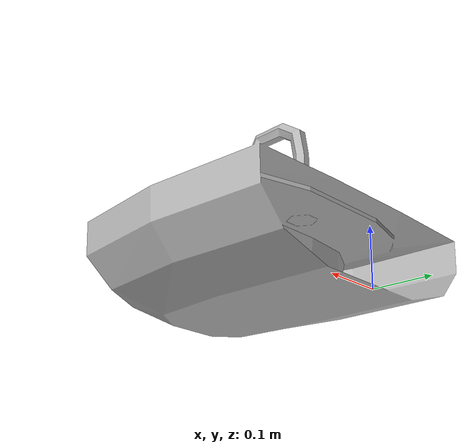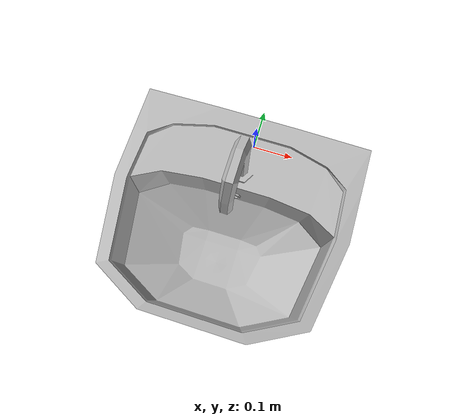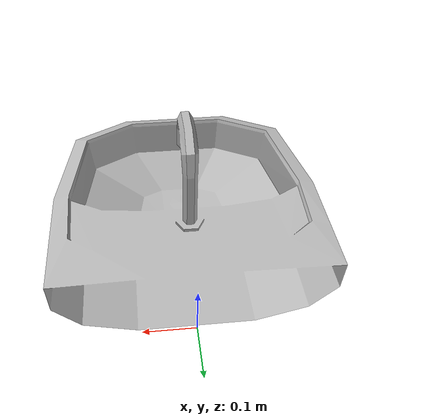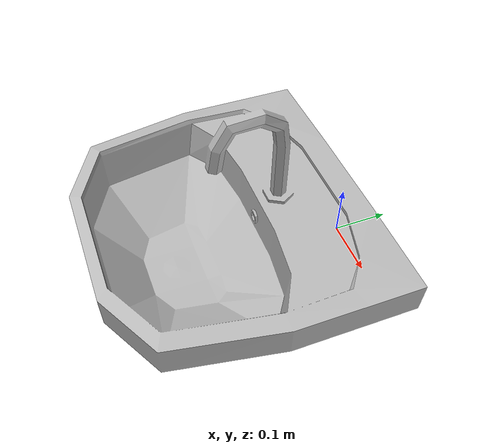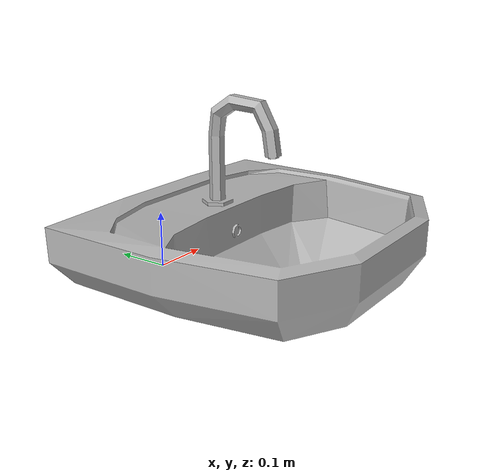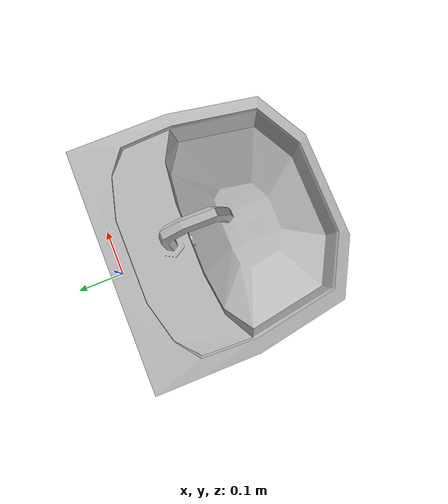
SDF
<?xml version='1.0' encoding='utf-8'?>
<sdf version="1.6">
  <model name="BathroomSink">
   <static>true</static>
    <link name="body">
      <pose>0 0 0 0 0 0</pose>

      <visual name="visual">
        <geometry>
          <mesh>
            <uri>model://BathroomSink/meshes/BathroomSink.obj</uri>
          </mesh>
        </geometry>
      </visual>

      <collision name="collision">
        <geometry>
          <mesh>
            <uri>model://BathroomSink/meshes/BathroomSink_Col.obj</uri>
          </mesh>
        </geometry>
      </collision>

    </link>
  </model>
</sdf>
